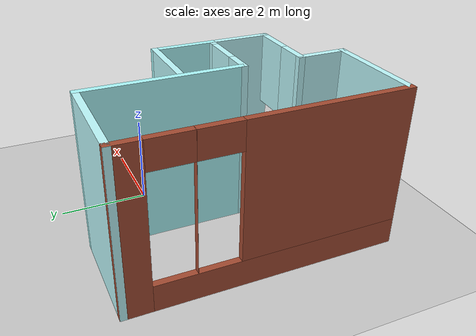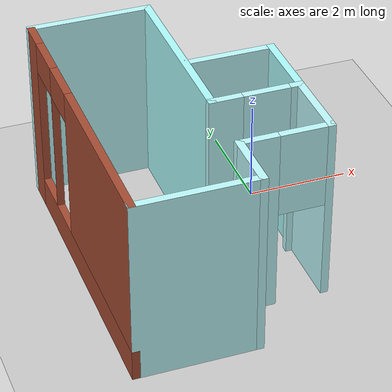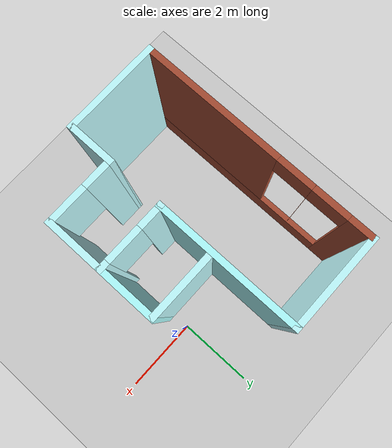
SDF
<sdf version="1.6">
 <world name="default">
  <model name="ground_plane">
   <static>1</static>
   <link name="link">
    <collision name="collision">
     <geometry><plane><normal>0 0 1</normal><size>100 100</size></plane></geometry>
     <surface>
      <contact><collide_bitmask>65535</collide_bitmask></contact>
      <friction><ode><mu>100</mu><mu2>50</mu2></ode></friction>
     </surface>
    </collision>
    <visual name="visual">
     <cast_shadows>0</cast_shadows>
     <geometry><plane><normal>0 0 1</normal><size>100 100</size></plane></geometry>
     <material>
      <script><uri>file://media/materials/scripts/gazebo.material</uri><name>Gazebo/Grey</name></script>
     </material>
    </visual>
   </link>
  </model>
  <model name="project1_building">
   <pose>-1.84991 -1.35299 0 0 -0 0</pose>
   <link name="Wall_27">
    <pose>-1.98497 0 0 0 0 -1.5708</pose>
    <visual name="Wall_27_Visual_0">
     <pose>-2.71564 0 1.83 0 -0 0</pose>
     <geometry><box><size>0.668723 0.15 3.66</size></box></geometry>
     <material>
      <script><uri>file://media/materials/scripts/gazebo.material</uri><name>Gazebo/Bricks</name></script>
      <ambient>0.435294 0.796078 0.67451 1</ambient>
     </material>
     <meta><layer>0</layer></meta>
    </visual>
    <collision name="Wall_27_Collision_0">
     <geometry><box><size>0.668723 0.15 3.66</size></box></geometry>
     <pose>-2.71564 0 1.83 0 -0 0</pose>
    </collision>
    <visual name="Wall_27_Visual_1">
     <pose>0.334362 0 0.305 0 -0 0</pose>
     <geometry><box><size>5.43128 0.15 0.61</size></box></geometry>
     <material>
      <script><uri>file://media/materials/scripts/gazebo.material</uri><name>Gazebo/Bricks</name></script>
      <ambient>0.435294 0.796078 0.67451 1</ambient>
     </material>
     <meta><layer>0</layer></meta>
    </visual>
    <collision name="Wall_27_Collision_1">
     <geometry><box><size>5.43128 0.15 0.61</size></box></geometry>
     <pose>0.334362 0 0.305 0 -0 0</pose>
    </collision>
    <visual name="Wall_27_Visual_2">
     <pose>-1.47001 0 2.135 0 -0 0</pose>
     <geometry><box><size>0.002525 0.15 3.05</size></box></geometry>
     <material>
      <script><uri>file://media/materials/scripts/gazebo.material</uri><name>Gazebo/Bricks</name></script>
      <ambient>0.435294 0.796078 0.67451 1</ambient>
     </material>
     <meta><layer>0</layer></meta>
    </visual>
    <collision name="Wall_27_Collision_2">
     <geometry><box><size>0.002525 0.15 3.05</size></box></geometry>
     <pose>-1.47001 0 2.135 0 -0 0</pose>
    </collision>
    <visual name="Wall_27_Visual_3">
     <pose>1.24562 0 2.135 0 -0 0</pose>
     <geometry><box><size>3.60875 0.15 3.05</size></box></geometry>
     <material>
      <script><uri>file://media/materials/scripts/gazebo.material</uri><name>Gazebo/Bricks</name></script>
      <ambient>0.435294 0.796078 0.67451 1</ambient>
     </material>
     <meta><layer>0</layer></meta>
    </visual>
    <collision name="Wall_27_Collision_3">
     <geometry><box><size>3.60875 0.15 3.05</size></box></geometry>
     <pose>1.24562 0 2.135 0 -0 0</pose>
    </collision>
    <visual name="Wall_27_Visual_4">
     <pose>-1.92628 0 3.355 0 -0 0</pose>
     <geometry><box><size>0.91 0.15 0.61</size></box></geometry>
     <material>
      <script><uri>file://media/materials/scripts/gazebo.material</uri><name>Gazebo/Bricks</name></script>
      <ambient>0.435294 0.796078 0.67451 1</ambient>
     </material>
     <meta><layer>0</layer></meta>
    </visual>
    <collision name="Wall_27_Collision_4">
     <geometry><box><size>0.91 0.15 0.61</size></box></geometry>
     <pose>-1.92628 0 3.355 0 -0 0</pose>
    </collision>
    <visual name="Wall_27_Visual_5">
     <pose>-1.01375 0 3.355 0 -0 0</pose>
     <geometry><box><size>0.91 0.15 0.61</size></box></geometry>
     <material>
      <script><uri>file://media/materials/scripts/gazebo.material</uri><name>Gazebo/Bricks</name></script>
      <ambient>0.435294 0.796078 0.67451 1</ambient>
     </material>
     <meta><layer>0</layer></meta>
    </visual>
    <collision name="Wall_27_Collision_5">
     <geometry><box><size>0.91 0.15 0.61</size></box></geometry>
     <pose>-1.01375 0 3.355 0 -0 0</pose>
    </collision>
   </link>
   <link name="Wall_29">
    <collision name="Wall_29_Collision">
     <geometry><box><size>2.44 0.15 3.66</size></box></geometry>
     <pose>0 0 1.83 0 -0 0</pose>
    </collision>
    <visual name="Wall_29_Visual">
     <pose>0 0 1.83 0 -0 0</pose>
     <geometry><box><size>2.44 0.15 3.66</size></box></geometry>
     <material>
      <script><uri>file://media/materials/scripts/gazebo.material</uri><name>Gazebo/Grey</name></script>
      <ambient>0.752941 0.988235 1 1</ambient>
     </material>
     <meta><layer>0</layer></meta>
    </visual>
    <pose>-0.839975 -2.975 0 0 -0 0</pose>
   </link>
   <link name="Wall_31">
    <collision name="Wall_31_Collision">
     <geometry><box><size>2.44 0.15 3.66</size></box></geometry>
     <pose>0 0 1.83 0 -0 0</pose>
    </collision>
    <visual name="Wall_31_Visual">
     <pose>0 0 1.83 0 -0 0</pose>
     <geometry><box><size>2.44 0.15 3.66</size></box></geometry>
     <material>
      <script><uri>file://media/materials/scripts/gazebo.material</uri><name>Gazebo/Grey</name></script>
      <ambient>0.752941 0.988235 1 1</ambient>
     </material>
     <meta><layer>0</layer></meta>
    </visual>
    <pose>-0.84003 2.97499 0 0 0 -6e-06</pose>
   </link>
   <link name="Wall_33">
    <collision name="Wall_33_Collision">
     <geometry><box><size>1.22 0.15 3.66</size></box></geometry>
     <pose>0 0 1.83 0 -0 0</pose>
    </collision>
    <visual name="Wall_33_Visual">
     <pose>0 0 1.83 0 -0 0</pose>
     <geometry><box><size>1.22 0.15 3.66</size></box></geometry>
     <material>
      <script><uri>file://media/materials/scripts/gazebo.material</uri><name>Gazebo/Grey</name></script>
      <ambient>0.752941 0.988235 1 1</ambient>
     </material>
     <meta><layer>0</layer></meta>
    </visual>
    <pose>0.305025 -2.44 0 0 -0 1.5708</pose>
   </link>
   <link name="Wall_35">
    <pose>1.14502 -1.905 0 0 -0 0</pose>
    <visual name="Wall_35_Visual_0">
     <pose>-0.517995 0 1.83 0 -0 0</pose>
     <geometry><box><size>0.79401 0.15 3.66</size></box></geometry>
     <material>
      <script><uri>file://media/materials/scripts/gazebo.material</uri><name>Gazebo/Grey</name></script>
      <ambient>0.752941 0.988235 1 1</ambient>
     </material>
     <meta><layer>0</layer></meta>
    </visual>
    <collision name="Wall_35_Collision_0">
     <geometry><box><size>0.79401 0.15 3.66</size></box></geometry>
     <pose>-0.517995 0 1.83 0 -0 0</pose>
    </collision>
    <visual name="Wall_35_Visual_1">
     <pose>0.847005 0 1.83 0 -0 0</pose>
     <geometry><box><size>0.13599 0.15 3.66</size></box></geometry>
     <material>
      <script><uri>file://media/materials/scripts/gazebo.material</uri><name>Gazebo/Grey</name></script>
      <ambient>0.752941 0.988235 1 1</ambient>
     </material>
     <meta><layer>0</layer></meta>
    </visual>
    <collision name="Wall_35_Collision_1">
     <geometry><box><size>0.13599 0.15 3.66</size></box></geometry>
     <pose>0.847005 0 1.83 0 -0 0</pose>
    </collision>
    <visual name="Wall_35_Visual_2">
     <pose>0.32901 0 2.83 0 -0 0</pose>
     <geometry><box><size>0.9 0.15 1.66</size></box></geometry>
     <material>
      <script><uri>file://media/materials/scripts/gazebo.material</uri><name>Gazebo/Grey</name></script>
      <ambient>0.752941 0.988235 1 1</ambient>
     </material>
     <meta><layer>0</layer></meta>
    </visual>
    <collision name="Wall_35_Collision_2">
     <geometry><box><size>0.9 0.15 1.66</size></box></geometry>
     <pose>0.32901 0 2.83 0 -0 0</pose>
    </collision>
   </link>
   <link name="Wall_42">
    <collision name="Wall_42_Collision">
     <geometry><box><size>1.52 0.15 3.66</size></box></geometry>
     <pose>0 0 1.83 0 -0 0</pose>
    </collision>
    <visual name="Wall_42_Visual">
     <pose>0 0 1.83 0 -0 0</pose>
     <geometry><box><size>1.52 0.15 3.66</size></box></geometry>
     <material>
      <script><uri>file://media/materials/scripts/gazebo.material</uri><name>Gazebo/Grey</name></script>
      <ambient>0.752941 0.988235 1 1</ambient>
     </material>
     <meta><layer>0</layer></meta>
    </visual>
    <pose>1.98497 -1.22001 0 0 -0 1.57088</pose>
   </link>
   <link name="Wall_44">
    <pose>1.14491 -0.535015 0 0 -0 3.14159</pose>
    <visual name="Wall_44_Visual_0">
     <pose>-0.778599 0 1.83 0 -0 0</pose>
     <geometry><box><size>0.272801 0.15 3.66</size></box></geometry>
     <material>
      <script><uri>file://media/materials/scripts/gazebo.material</uri><name>Gazebo/Grey</name></script>
      <ambient>0.752941 0.988235 1 1</ambient>
     </material>
     <meta><layer>0</layer></meta>
    </visual>
    <collision name="Wall_44_Collision_0">
     <geometry><box><size>0.272801 0.15 3.66</size></box></geometry>
     <pose>-0.778599 0 1.83 0 -0 0</pose>
    </collision>
    <visual name="Wall_44_Visual_1">
     <pose>0.586401 0 1.83 0 -0 0</pose>
     <geometry><box><size>0.657199 0.15 3.66</size></box></geometry>
     <material>
      <script><uri>file://media/materials/scripts/gazebo.material</uri><name>Gazebo/Grey</name></script>
      <ambient>0.752941 0.988235 1 1</ambient>
     </material>
     <meta><layer>0</layer></meta>
    </visual>
    <collision name="Wall_44_Collision_1">
     <geometry><box><size>0.657199 0.15 3.66</size></box></geometry>
     <pose>0.586401 0 1.83 0 -0 0</pose>
    </collision>
    <visual name="Wall_44_Visual_2">
     <pose>-0.192199 0 2.83 0 -0 0</pose>
     <geometry><box><size>0.9 0.15 1.66</size></box></geometry>
     <material>
      <script><uri>file://media/materials/scripts/gazebo.material</uri><name>Gazebo/Grey</name></script>
      <ambient>0.752941 0.988235 1 1</ambient>
     </material>
     <meta><layer>0</layer></meta>
    </visual>
    <collision name="Wall_44_Collision_2">
     <geometry><box><size>0.9 0.15 1.66</size></box></geometry>
     <pose>-0.192199 0 2.83 0 -0 0</pose>
    </collision>
   </link>
   <link name="Wall_46">
    <collision name="Wall_46_Collision">
     <geometry><box><size>3.66 0.15 3.66</size></box></geometry>
     <pose>0 0 1.83 0 -0 0</pose>
    </collision>
    <visual name="Wall_46_Visual">
     <pose>0 0 1.83 0 -0 0</pose>
     <geometry><box><size>3.66 0.15 3.66</size></box></geometry>
     <material>
      <script><uri>file://media/materials/scripts/gazebo.material</uri><name>Gazebo/Grey</name></script>
      <ambient>0.686275 0.996078 1 1</ambient>
     </material>
     <meta><layer>0</layer></meta>
    </visual>
    <pose>0.304915 1.21999 0 0 -0 1.5708</pose>
   </link>
   <link name="Wall_48">
    <collision name="Wall_48_Collision">
     <geometry><box><size>1.52 0.15 3.66</size></box></geometry>
     <pose>0 0 1.83 0 -0 0</pose>
    </collision>
    <visual name="Wall_48_Visual">
     <pose>0 0 1.83 0 -0 0</pose>
     <geometry><box><size>1.52 0.15 3.66</size></box></geometry>
     <material>
      <script><uri>file://media/materials/scripts/gazebo.material</uri><name>Gazebo/Grey</name></script>
      <ambient>0.686275 0.996078 1 1</ambient>
     </material>
     <meta><layer>0</layer></meta>
    </visual>
    <pose>1.98491 0.149985 0 0 -0 1.5708</pose>
   </link>
   <link name="Wall_50">
    <collision name="Wall_50_Collision">
     <geometry><box><size>1.75 0.15 3.66</size></box></geometry>
     <pose>0 0 1.83 0 -0 0</pose>
    </collision>
    <visual name="Wall_50_Visual">
     <pose>0 0 1.83 0 -0 0</pose>
     <geometry><box><size>1.75 0.15 3.66</size></box></geometry>
     <material>
      <script><uri>file://media/materials/scripts/gazebo.material</uri><name>Gazebo/Grey</name></script>
      <ambient>0.752941 0.988235 1 1</ambient>
     </material>
     <meta><layer>0</layer></meta>
    </visual>
    <pose>1.18491 0.834985 0 0 -0 3.14159</pose>
   </link>
   <static>1</static>
  </model>
 </world>
</sdf>
